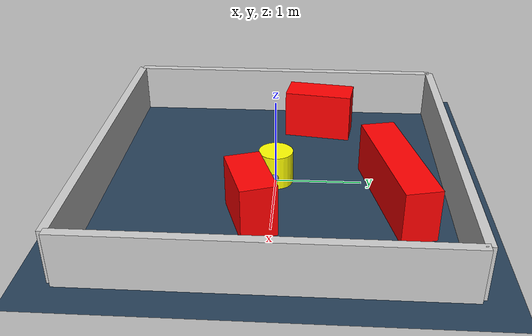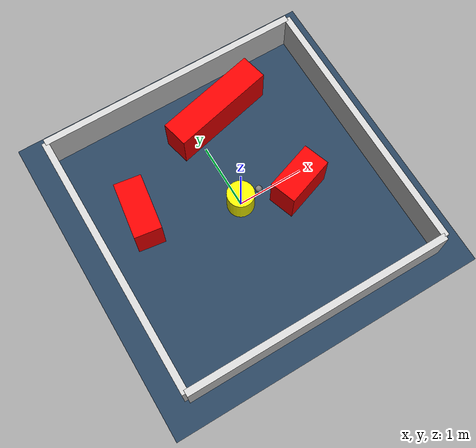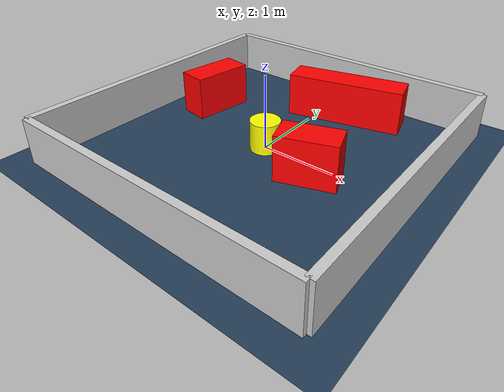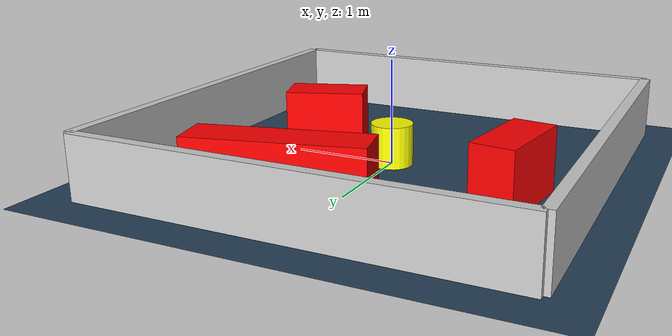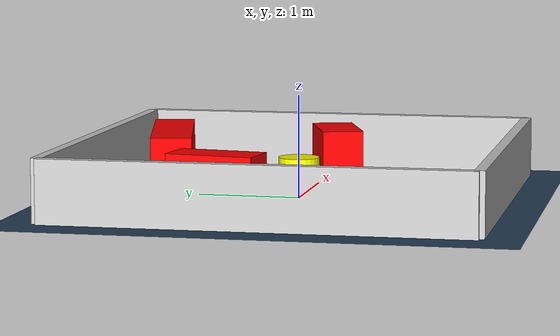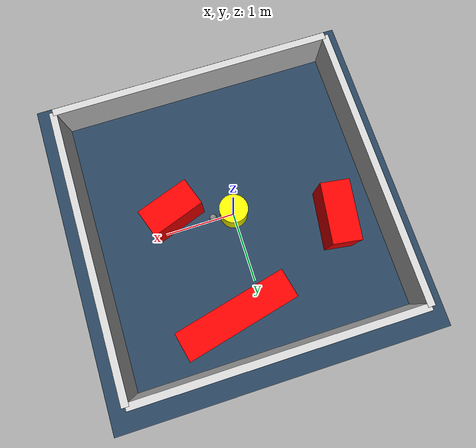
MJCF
<?xml version="1.0" ?>
<mujoco model="generated_environment">
  <option timestep="0.01" integrator="RK4" cone="elliptic"/>
  <default>
    <geom density="1"/>
  </default>
  <asset>
    <texture builtin="gradient" height="3072" rgb1="0.3 0.5 0.7" rgb2="0 0 0" type="skybox" width="512"/>
    <texture builtin="checker" height="300" mark="edge" markrgb="0.8 0.8 0.8" name="groundplane" rgb1="0.2 0.3 0.4" rgb2="0.1 0.2 0.3" type="2d" width="300"/>
    <material name="groundplane" reflectance="0.2" texrepeat="5 5" texture="groundplane" texuniform="true"/>
    <material name="robot" rgba="0.0 1.0 0.0 1"/>
  </asset>
  <worldbody>
    <light dir="0 0 -1" directional="true" pos="0 0 1.5"/>
    <geom condim="4" friction="1.0 0.005 0.001" material="groundplane" name="floor" size="0 0 0.05" type="plane"/>
    <body name="walls">
      <geom name="wall_1" condim="4" pos="-2.0 0.0 0.3" rgba="0.800000011920929 0.800000011920929 0.800000011920929 1.0" size="0.05 2.0 0.3" type="box"/>
      <geom name="wall_2" condim="4" pos="2.0 0.0 0.3" rgba="0.800000011920929 0.800000011920929 0.800000011920929 1.0" size="0.05 2.0 0.3" type="box"/>
      <geom name="wall_3" condim="4" pos="0.0 -2.0 0.3" rgba="0.800000011920929 0.800000011920929 0.800000011920929 1.0" size="2.0 0.05 0.3" type="box"/>
      <geom name="wall_4" condim="4" pos="0.0 2.0 0.3" rgba="0.800000011920929 0.800000011920929 0.800000011920929 1.0" size="2.0 0.05 0.3" type="box"/>
    </body>
    <body name="robot">
      <joint name="joint_x" type="slide" pos="0 0 0" axis="1 0 0"/>
      <joint name="joint_y" type="slide" pos="0 0 0" axis="0 1 0"/>
      <geom name="robot" type="sphere" pos="0.3 0.0 0.2" size="0.05" mass="5." friction="1.0 0.005 0.0001" condim="4" rgba="0.5 0.5 0.5 1.0"/>
      <site name="sensor_ball"/>
    </body>
    <body name="obstacle_movable_1">
      <geom name="obstacle_movable_1" condim="4" pos="0.0 0.0 0.2" euler="0 0 0.0" friction="1.0 0.005 0.001" rgba="1.0 1.0 0.0 1.0" size="0.2 0.2 0.0" type="cylinder" mass="0.1"/>
      <joint type="free"/>
    </body>
    <body name="obstacle_2_static">
      <geom name="obstacle_2_static" condim="4" pos="-1.3330421482436645 0.4999955770908826 0.3" euler="0 0 81.85564240539588" friction="1.0 0.005 0.001" rgba="1 0 0 1" size="0.41902245197657606 0.2 0.3" type="box"/>
    </body>
    <body name="obstacle_3_static">
      <geom name="obstacle_3_static" condim="4" pos="0.38302633004639564 1.3610811534504619 0.3" euler="0 0 13.286572204671794" friction="1.0 0.005 0.001" rgba="1 0 0 1" size="0.7871992476599163 0.2 0.3" type="box"/>
    </body>
    <body name="obstacle_4_static">
      <geom name="obstacle_4_static" condim="4" pos="0.8139249242967277 -0.22511854670181997 0.3" euler="0 0 19.126717538937825" friction="1.0 0.005 0.001" rgba="1 0 0 1" size="0.3769866157736471 0.2 0.3" type="box"/>
    </body>
  </worldbody>
  <actuator>
    <motor name="actuator_x" joint="joint_x" gear="1" ctrlrange="-1 1"/>
    <motor name="actuator_y" joint="joint_y" gear="1" ctrlrange="-1 1"/>
  </actuator>
</mujoco>
